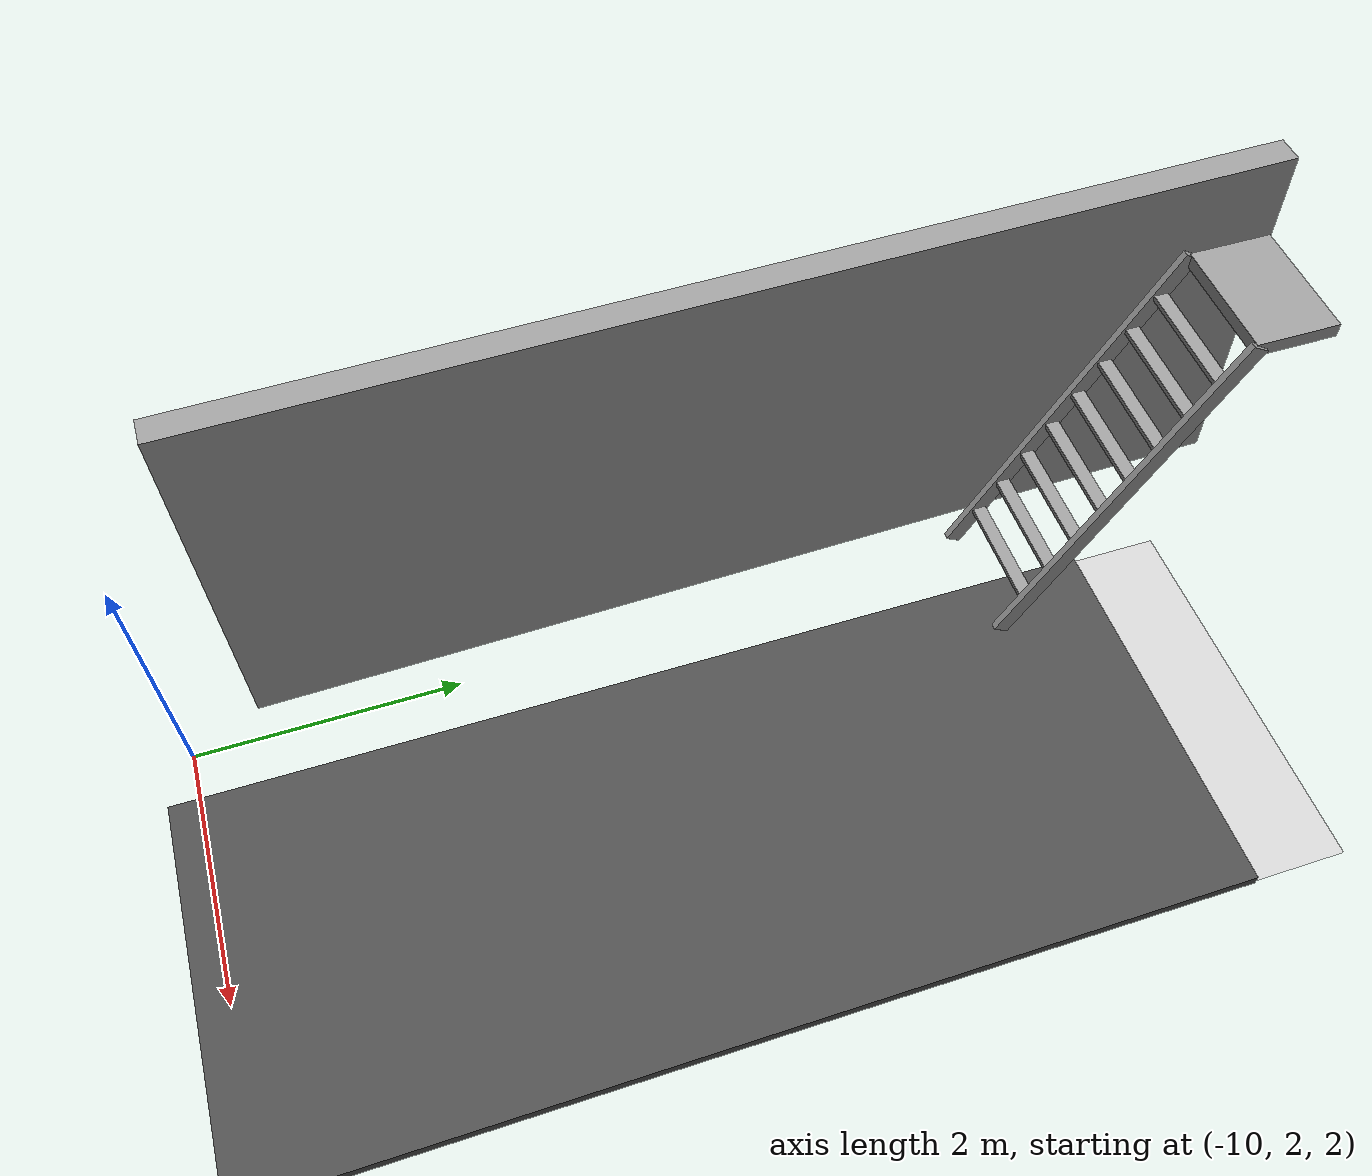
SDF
<sdf version="1.4">
 <world name="default">
  <model name="grey_wall_6">
   <static>1</static>
   <link name="link">
    <pose>0 0 1.4 0 -0 0</pose>
    <collision name="collision"><geometry><box><size>7.5 0.2 2.8</size></box></geometry></collision>
    <visual name="visual">
     <cast_shadows>0</cast_shadows>
     <geometry><box><size>7.5 0.2 2.8</size></box></geometry>
     <material>
      <script>
       <uri>model://grey_wall/materials/scripts</uri>
       <uri>model://grey_wall/materials/textures</uri>
       <name>vrc/grey_wall</name>
      </script>
     </material>
    </visual>
    <velocity_decay><linear>0</linear><angular>0</angular></velocity_decay>
   </link>
   <pose>-10.0599 6.33451 2.54494 0 -0 1.59141</pose>
  </model>
  <model name="ladder_60deg_0rails_0">
   <static>1</static>
   <link name="step0">
    <pose>0 0.15396 0.266667 0 -0 0</pose>
    <inertial>
     <mass>9.75482</mass>
     <inertia>
      <ixx>0.00957124</ixx>
      <iyy>0.65963</iyy>
      <izz>0.666842</izz>
      <ixy>0</ixy>
      <ixz>0</ixz>
      <iyz>0</iyz>
     </inertia>
    </inertial>
    <collision name="collision"><geometry><box><size>0.9 0.1016 0.0381</size></box></geometry></collision>
    <visual name="visual">
     <geometry><box><size>0.9 0.1016 0.0381</size></box></geometry>
     <material>
      <script><uri>file://media/materials/scripts/gazebo.material</uri><name>Gazebo/Grey</name></script>
     </material>
    </visual>
    <velocity_decay><linear>0</linear><angular>0</angular></velocity_decay>
   </link>
   <link name="step1">
    <pose>0 0.30792 0.533333 0 -0 0</pose>
    <inertial>
     <mass>9.75482</mass>
     <inertia>
      <ixx>0.00957124</ixx>
      <iyy>0.65963</iyy>
      <izz>0.666842</izz>
      <ixy>0</ixy>
      <ixz>0</ixz>
      <iyz>0</iyz>
     </inertia>
    </inertial>
    <collision name="collision"><geometry><box><size>0.9 0.1016 0.0381</size></box></geometry></collision>
    <visual name="visual">
     <geometry><box><size>0.9 0.1016 0.0381</size></box></geometry>
     <material>
      <script><uri>file://media/materials/scripts/gazebo.material</uri><name>Gazebo/Grey</name></script>
     </material>
    </visual>
    <velocity_decay><linear>0</linear><angular>0</angular></velocity_decay>
   </link>
   <link name="step2">
    <pose>0 0.46188 0.8 0 -0 0</pose>
    <inertial>
     <mass>9.75482</mass>
     <inertia>
      <ixx>0.00957124</ixx>
      <iyy>0.65963</iyy>
      <izz>0.666842</izz>
      <ixy>0</ixy>
      <ixz>0</ixz>
      <iyz>0</iyz>
     </inertia>
    </inertial>
    <collision name="collision"><geometry><box><size>0.9 0.1016 0.0381</size></box></geometry></collision>
    <visual name="visual">
     <geometry><box><size>0.9 0.1016 0.0381</size></box></geometry>
     <material>
      <script><uri>file://media/materials/scripts/gazebo.material</uri><name>Gazebo/Grey</name></script>
     </material>
    </visual>
    <velocity_decay><linear>0</linear><angular>0</angular></velocity_decay>
   </link>
   <link name="step3">
    <pose>0 0.61584 1.06667 0 -0 0</pose>
    <inertial>
     <mass>9.75482</mass>
     <inertia>
      <ixx>0.00957124</ixx>
      <iyy>0.65963</iyy>
      <izz>0.666842</izz>
      <ixy>0</ixy>
      <ixz>0</ixz>
      <iyz>0</iyz>
     </inertia>
    </inertial>
    <collision name="collision"><geometry><box><size>0.9 0.1016 0.0381</size></box></geometry></collision>
    <visual name="visual">
     <geometry><box><size>0.9 0.1016 0.0381</size></box></geometry>
     <material>
      <script><uri>file://media/materials/scripts/gazebo.material</uri><name>Gazebo/Grey</name></script>
     </material>
    </visual>
    <velocity_decay><linear>0</linear><angular>0</angular></velocity_decay>
   </link>
   <link name="step4">
    <pose>0 0.7698 1.33333 0 -0 0</pose>
    <inertial>
     <mass>9.75482</mass>
     <inertia>
      <ixx>0.00957124</ixx>
      <iyy>0.65963</iyy>
      <izz>0.666842</izz>
      <ixy>0</ixy>
      <ixz>0</ixz>
      <iyz>0</iyz>
     </inertia>
    </inertial>
    <collision name="collision"><geometry><box><size>0.9 0.1016 0.0381</size></box></geometry></collision>
    <visual name="visual">
     <geometry><box><size>0.9 0.1016 0.0381</size></box></geometry>
     <material>
      <script><uri>file://media/materials/scripts/gazebo.material</uri><name>Gazebo/Grey</name></script>
     </material>
    </visual>
    <velocity_decay><linear>0</linear><angular>0</angular></velocity_decay>
   </link>
   <link name="step5">
    <pose>0 0.92376 1.6 0 -0 0</pose>
    <inertial>
     <mass>9.75482</mass>
     <inertia>
      <ixx>0.00957124</ixx>
      <iyy>0.65963</iyy>
      <izz>0.666842</izz>
      <ixy>0</ixy>
      <ixz>0</ixz>
      <iyz>0</iyz>
     </inertia>
    </inertial>
    <collision name="collision"><geometry><box><size>0.9 0.1016 0.0381</size></box></geometry></collision>
    <visual name="visual">
     <geometry><box><size>0.9 0.1016 0.0381</size></box></geometry>
     <material>
      <script><uri>file://media/materials/scripts/gazebo.material</uri><name>Gazebo/Grey</name></script>
     </material>
    </visual>
    <velocity_decay><linear>0</linear><angular>0</angular></velocity_decay>
   </link>
   <link name="step6">
    <pose>0 1.07772 1.86667 0 -0 0</pose>
    <inertial>
     <mass>9.75482</mass>
     <inertia>
      <ixx>0.00957124</ixx>
      <iyy>0.65963</iyy>
      <izz>0.666842</izz>
      <ixy>0</ixy>
      <ixz>0</ixz>
      <iyz>0</iyz>
     </inertia>
    </inertial>
    <collision name="collision"><geometry><box><size>0.9 0.1016 0.0381</size></box></geometry></collision>
    <visual name="visual">
     <geometry><box><size>0.9 0.1016 0.0381</size></box></geometry>
     <material>
      <script><uri>file://media/materials/scripts/gazebo.material</uri><name>Gazebo/Grey</name></script>
     </material>
    </visual>
    <velocity_decay><linear>0</linear><angular>0</angular></velocity_decay>
   </link>
   <link name="step7">
    <pose>0 1.23168 2.13333 0 -0 0</pose>
    <inertial>
     <mass>9.75482</mass>
     <inertia>
      <ixx>0.00957124</ixx>
      <iyy>0.65963</iyy>
      <izz>0.666842</izz>
      <ixy>0</ixy>
      <ixz>0</ixz>
      <iyz>0</iyz>
     </inertia>
    </inertial>
    <collision name="collision"><geometry><box><size>0.9 0.1016 0.0381</size></box></geometry></collision>
    <visual name="visual">
     <geometry><box><size>0.9 0.1016 0.0381</size></box></geometry>
     <material>
      <script><uri>file://media/materials/scripts/gazebo.material</uri><name>Gazebo/Grey</name></script>
     </material>
    </visual>
    <velocity_decay><linear>0</linear><angular>0</angular></velocity_decay>
   </link>
   <link name="landing">
    <pose>0 1.68564 2.4 0 -0 0</pose>
    <inertial>
     <mass>57.6072</mass>
     <inertia><ixx>1.73518</ixx><iyy>3.89545</iyy><izz>5.6167</izz><ixy>0</ixy><ixz>0</ixz><iyz>0</iyz></inertia>
    </inertial>
    <collision name="collision"><geometry><box><size>0.9 0.6 0.1016</size></box></geometry></collision>
    <visual name="visual">
     <geometry><box><size>0.9 0.6 0.1016</size></box></geometry>
     <material>
      <script><uri>file://media/materials/scripts/gazebo.material</uri><name>Gazebo/Grey</name></script>
     </material>
    </visual>
    <velocity_decay><linear>0</linear><angular>0</angular></velocity_decay>
   </link>
   <link name="left_side_wall">
    <pose>-0.45 0.69282 1.2 1.0472 -0 0</pose>
    <collision name="collision"><geometry><box><size>0.0508 2.85128 0.13</size></box></geometry></collision>
    <visual name="visual">
     <geometry><box><size>0.0508 2.85128 0.13</size></box></geometry>
     <material>
      <script><uri>file://media/materials/scripts/gazebo.material</uri><name>Gazebo/Grey</name></script>
     </material>
    </visual>
    <velocity_decay><linear>0</linear><angular>0</angular></velocity_decay>
   </link>
   <link name="right_side_wall">
    <pose>0.45 0.69282 1.2 1.0472 -0 0</pose>
    <collision name="collision"><geometry><box><size>0.0508 2.85128 0.13</size></box></geometry></collision>
    <visual name="visual">
     <geometry><box><size>0.0508 2.85128 0.13</size></box></geometry>
     <material>
      <script><uri>file://media/materials/scripts/gazebo.material</uri><name>Gazebo/Grey</name></script>
     </material>
    </visual>
    <velocity_decay><linear>0</linear><angular>0</angular></velocity_decay>
   </link>
   <pose>-9.41421 7.93061 2.43436 0 -0 0</pose>
  </model>
  <model name="ground_plane">
   <static>1</static>
   <link name="link">
    <collision name="collision">
     <geometry><plane><normal>0 0 1</normal><size>100 100</size></plane></geometry>
     <surface><friction><ode><mu>100</mu><mu2>50</mu2></ode></friction></surface>
    </collision>
    <visual name="visual">
     <cast_shadows>0</cast_shadows>
     <geometry><plane><normal>0 0 1</normal><size>100 100</size></plane></geometry>
     <material>
      <script><uri>file://media/materials/scripts/gazebo.material</uri><name>Gazebo/Grey</name></script>
     </material>
    </visual>
    <velocity_decay><linear>0</linear><angular>0</angular></velocity_decay>
   </link>
   <pose>-5 8 0 0 -0 0</pose>
  </model>
  <model name="asphalt_plane">
   <static>1</static>
   <link name="link">
    <collision name="collision"><geometry><box><size>20 20 0.1</size></box></geometry></collision>
    <visual name="visual">
     <cast_shadows>0</cast_shadows>
     <geometry><box><size>20 20 0.1</size></box></geometry>
     <material>
      <script>
       <uri>model://asphalt_plane/materials/scripts</uri>
       <uri>model://asphalt_plane/materials/textures</uri>
       <name>vrc/asphalt</name>
      </script>
     </material>
    </visual>
    <velocity_decay><linear>0</linear><angular>0</angular></velocity_decay>
   </link>
   <pose>-1.12078 -0.103901 0 0 -0 0</pose>
  </model>
 </world>
</sdf>
